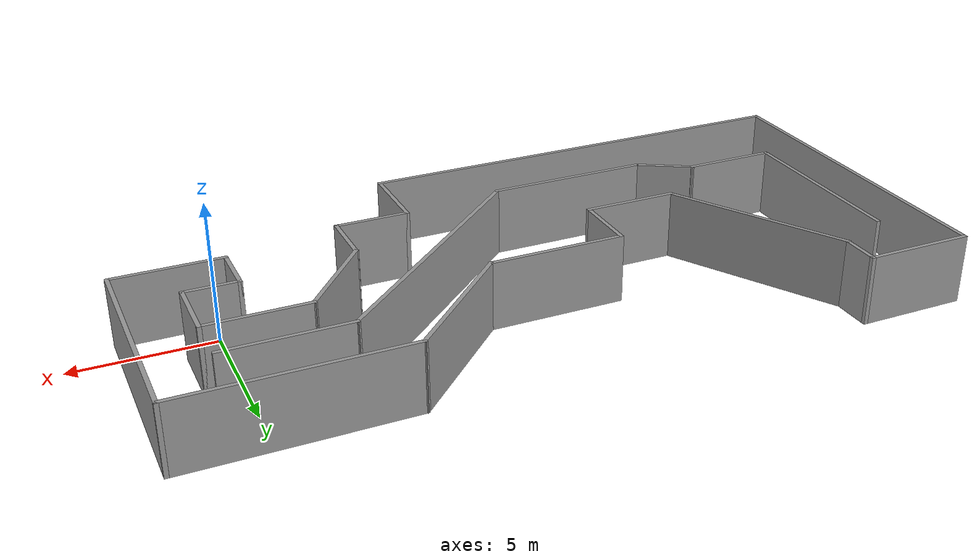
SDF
<?xml version='1.0'?>
<sdf version='1.7'>
  <model name='challenge'>
    <pose>-10.394 1.66925 0 0 -0 0</pose>
    <link name='Wall_0'>
      <collision name='Wall_0_Collision'>
        <geometry>
          <box>
            <size>2 0.15 2.5</size>
          </box>
        </geometry>
        <pose>0 0 1.25 0 -0 0</pose>
      </collision>
      <visual name='Wall_0_Visual'>
        <pose>0 0 1.25 0 -0 0</pose>
        <geometry>
          <box>
            <size>2 0.15 2.5</size>
          </box>
        </geometry>
        <material>
          <script>
            <uri>file://media/materials/scripts/gazebo.material</uri>
            <name>Gazebo/Grey</name>
          </script>
          <ambient>1 1 1 1</ambient>
        </material>
        <meta>
          <layer>0</layer>
        </meta>
      </visual>
      <pose>9.70401 -1.77425 0 0 -0 1.5708</pose>
    </link>
    <link name='Wall_12'>
      <collision name='Wall_12_Collision'>
        <geometry>
          <box>
            <size>8 0.15 2.5</size>
          </box>
        </geometry>
        <pose>0 0 1.25 0 -0 0</pose>
      </collision>
      <visual name='Wall_12_Visual'>
        <pose>0 0 1.25 0 -0 0</pose>
        <geometry>
          <box>
            <size>8 0.15 2.5</size>
          </box>
        </geometry>
        <material>
          <script>
            <uri>file://media/materials/scripts/gazebo.material</uri>
            <name>Gazebo/Grey</name>
          </script>
          <ambient>1 1 1 1</ambient>
        </material>
        <meta>
          <layer>0</layer>
        </meta>
      </visual>
      <pose>13.554 1.22575 0 0 -0 1.5708</pose>
    </link>
    <link name='Wall_13'>
      <collision name='Wall_13_Collision'>
        <geometry>
          <box>
            <size>8 0.15 2.5</size>
          </box>
        </geometry>
        <pose>0 0 1.25 0 -0 0</pose>
      </collision>
      <visual name='Wall_13_Visual'>
        <pose>0 0 1.25 0 -0 0</pose>
        <geometry>
          <box>
            <size>8 0.15 2.5</size>
          </box>
        </geometry>
        <material>
          <script>
            <uri>file://media/materials/scripts/gazebo.material</uri>
            <name>Gazebo/Grey</name>
          </script>
          <ambient>1 1 1 1</ambient>
        </material>
        <meta>
          <layer>0</layer>
        </meta>
      </visual>
      <pose>9.62901 5.15075 0 0 -0 3.14159</pose>
    </link>
    <link name='Wall_18'>
      <collision name='Wall_18_Collision'>
        <geometry>
          <box>
            <size>5.5 0.15 2.5</size>
          </box>
        </geometry>
        <pose>0 0 1.25 0 -0 0</pose>
      </collision>
      <visual name='Wall_18_Visual'>
        <pose>0 0 1.25 0 -0 0</pose>
        <geometry>
          <box>
            <size>5.5 0.15 2.5</size>
          </box>
        </geometry>
        <material>
          <script>
            <uri>file://media/materials/scripts/gazebo.material</uri>
            <name>Gazebo/Grey</name>
          </script>
          <ambient>1 1 1 1</ambient>
        </material>
        <meta>
          <layer>0</layer>
        </meta>
      </visual>
      <pose>3.8125 3.25924 0 0 -0 -2.35619</pose>
    </link>
    <link name='Wall_2'>
      <collision name='Wall_2_Collision'>
        <geometry>
          <box>
            <size>4 0.15 2.5</size>
          </box>
        </geometry>
        <pose>0 0 1.25 0 -0 0</pose>
      </collision>
      <visual name='Wall_2_Visual'>
        <pose>0 0 1.25 0 -0 0</pose>
        <geometry>
          <box>
            <size>4 0.15 2.5</size>
          </box>
        </geometry>
        <material>
          <script>
            <uri>file://media/materials/scripts/gazebo.material</uri>
            <name>Gazebo/Grey</name>
          </script>
          <ambient>1 1 1 1</ambient>
        </material>
        <meta>
          <layer>0</layer>
        </meta>
      </visual>
      <pose>11.629 -2.69925 0 0 -0 0</pose>
    </link>
    <link name='Wall_26'>
      <collision name='Wall_26_Collision'>
        <geometry>
          <box>
            <size>5 0.15 2.5</size>
          </box>
        </geometry>
        <pose>0 0 1.25 0 -0 0</pose>
      </collision>
      <visual name='Wall_26_Visual'>
        <pose>0 0 1.25 0 -0 0</pose>
        <geometry>
          <box>
            <size>5 0.15 2.5</size>
          </box>
        </geometry>
        <material>
          <script>
            <uri>file://media/materials/scripts/gazebo.material</uri>
            <name>Gazebo/Grey</name>
          </script>
          <ambient>1 1 1 1</ambient>
        </material>
        <meta>
          <layer>0</layer>
        </meta>
      </visual>
      <pose>-0.504011 1.36773 0 0 -0 3.14159</pose>
    </link>
    <link name='Wall_27'>
      <collision name='Wall_27_Collision'>
        <geometry>
          <box>
            <size>2.5 0.15 2.5</size>
          </box>
        </geometry>
        <pose>0 0 1.25 0 -0 0</pose>
      </collision>
      <visual name='Wall_27_Visual'>
        <pose>0 0 1.25 0 -0 0</pose>
        <geometry>
          <box>
            <size>2.5 0.15 2.5</size>
          </box>
        </geometry>
        <material>
          <script>
            <uri>file://media/materials/scripts/gazebo.material</uri>
            <name>Gazebo/Grey</name>
          </script>
          <ambient>1 1 1 1</ambient>
        </material>
        <meta>
          <layer>0</layer>
        </meta>
      </visual>
      <pose>-2.92901 0.192726 0 0 -0 -1.5708</pose>
    </link>
    <link name='Wall_28'>
      <collision name='Wall_28_Collision'>
        <geometry>
          <box>
            <size>3.5 0.15 2.5</size>
          </box>
        </geometry>
        <pose>0 0 1.25 0 -0 0</pose>
      </collision>
      <visual name='Wall_28_Visual'>
        <pose>0 0 1.25 0 -0 0</pose>
        <geometry>
          <box>
            <size>3.5 0.15 2.5</size>
          </box>
        </geometry>
        <material>
          <script>
            <uri>file://media/materials/scripts/gazebo.material</uri>
            <name>Gazebo/Grey</name>
          </script>
          <ambient>1 1 1 1</ambient>
        </material>
        <meta>
          <layer>0</layer>
        </meta>
      </visual>
      <pose>-4.60401 -0.982274 0 0 -0 3.14159</pose>
    </link>
    <link name='Wall_30'>
      <collision name='Wall_30_Collision'>
        <geometry>
          <box>
            <size>7 0.15 2.5</size>
          </box>
        </geometry>
        <pose>0 0 1.25 0 -0 0</pose>
      </collision>
      <visual name='Wall_30_Visual'>
        <pose>0 0 1.25 0 -0 0</pose>
        <geometry>
          <box>
            <size>7 0.15 2.5</size>
          </box>
        </geometry>
        <material>
          <script>
            <uri>file://media/materials/scripts/gazebo.material</uri>
            <name>Gazebo/Grey</name>
          </script>
          <ambient>1 1 1 1</ambient>
        </material>
        <meta>
          <layer>0</layer>
        </meta>
      </visual>
      <pose>-7.99151 1.98386 0 0 -0 2.0944</pose>
    </link>
    <link name='Wall_31'>
      <collision name='Wall_31_Collision'>
        <geometry>
          <box>
            <size>1.5 0.15 2.5</size>
          </box>
        </geometry>
        <pose>0 0 1.25 0 -0 0</pose>
      </collision>
      <visual name='Wall_31_Visual'>
        <pose>0 0 1.25 0 -0 0</pose>
        <geometry>
          <box>
            <size>1.5 0.15 2.5</size>
          </box>
        </geometry>
        <material>
          <script>
            <uri>file://media/materials/scripts/gazebo.material</uri>
            <name>Gazebo/Grey</name>
          </script>
          <ambient>1 1 1 1</ambient>
        </material>
        <meta>
          <layer>0</layer>
        </meta>
      </visual>
      <pose>-9.70401 5.625 0 0 -0 1.5708</pose>
    </link>
    <link name='Wall_32'>
      <collision name='Wall_32_Collision'>
        <geometry>
          <box>
            <size>4 0.15 2.5</size>
          </box>
        </geometry>
        <pose>0 0 1.25 0 -0 0</pose>
      </collision>
      <visual name='Wall_32_Visual'>
        <pose>0 0 1.25 0 -0 0</pose>
        <geometry>
          <box>
            <size>4 0.15 2.5</size>
          </box>
        </geometry>
        <material>
          <script>
            <uri>file://media/materials/scripts/gazebo.material</uri>
            <name>Gazebo/Grey</name>
          </script>
          <ambient>1 1 1 1</ambient>
        </material>
        <meta>
          <layer>0</layer>
        </meta>
      </visual>
      <pose>-11.629 6.3 0 0 -0 3.14159</pose>
    </link>
    <link name='Wall_33'>
      <collision name='Wall_33_Collision'>
        <geometry>
          <box>
            <size>12.75 0.15 2.5</size>
          </box>
        </geometry>
        <pose>0 0 1.25 0 -0 0</pose>
      </collision>
      <visual name='Wall_33_Visual'>
        <pose>0 0 1.25 0 -0 0</pose>
        <geometry>
          <box>
            <size>12.75 0.15 2.5</size>
          </box>
        </geometry>
        <material>
          <script>
            <uri>file://media/materials/scripts/gazebo.material</uri>
            <name>Gazebo/Grey</name>
          </script>
          <ambient>1 1 1 1</ambient>
        </material>
        <meta>
          <layer>0</layer>
        </meta>
      </visual>
      <pose>-13.554 0 0 0 -0 -1.5708</pose>
    </link>
    <link name='Wall_34'>
      <collision name='Wall_34_Collision'>
        <geometry>
          <box>
            <size>16.75 0.15 2.5</size>
          </box>
        </geometry>
        <pose>0 0 1.25 0 -0 0</pose>
      </collision>
      <visual name='Wall_34_Visual'>
        <pose>0 0 1.25 0 -0 0</pose>
        <geometry>
          <box>
            <size>16.75 0.15 2.5</size>
          </box>
        </geometry>
        <material>
          <script>
            <uri>file://media/materials/scripts/gazebo.material</uri>
            <name>Gazebo/Grey</name>
          </script>
          <ambient>1 1 1 1</ambient>
        </material>
        <meta>
          <layer>0</layer>
        </meta>
      </visual>
      <pose>-5.25401 -6.3 0 0 -0 0</pose>
    </link>
    <link name='Wall_35'>
      <collision name='Wall_35_Collision'>
        <geometry>
          <box>
            <size>3 0.15 2.5</size>
          </box>
        </geometry>
        <pose>0 0 1.25 0 -0 0</pose>
      </collision>
      <visual name='Wall_35_Visual'>
        <pose>0 0 1.25 0 -0 0</pose>
        <geometry>
          <box>
            <size>3 0.15 2.5</size>
          </box>
        </geometry>
        <material>
          <script>
            <uri>file://media/materials/scripts/gazebo.material</uri>
            <name>Gazebo/Grey</name>
          </script>
          <ambient>1 1 1 1</ambient>
        </material>
        <meta>
          <layer>0</layer>
        </meta>
      </visual>
      <pose>3.04599 -4.875 0 0 -0 1.5708</pose>
    </link>
    <link name='Wall_36'>
      <collision name='Wall_36_Collision'>
        <geometry>
          <box>
            <size>2.75 0.15 2.5</size>
          </box>
        </geometry>
        <pose>0 0 1.25 0 -0 0</pose>
      </collision>
      <visual name='Wall_36_Visual'>
        <pose>0 0 1.25 0 -0 0</pose>
        <geometry>
          <box>
            <size>2.75 0.15 2.5</size>
          </box>
        </geometry>
        <material>
          <script>
            <uri>file://media/materials/scripts/gazebo.material</uri>
            <name>Gazebo/Grey</name>
          </script>
          <ambient>1 1 1 1</ambient>
        </material>
        <meta>
          <layer>0</layer>
        </meta>
      </visual>
      <pose>4.34599 -3.45 0 0 -0 0</pose>
    </link>
    <link name='Wall_38'>
      <collision name='Wall_38_Collision'>
        <geometry>
          <box>
            <size>2 0.15 2.5</size>
          </box>
        </geometry>
        <pose>0 0 1.25 0 -0 0</pose>
      </collision>
      <visual name='Wall_38_Visual'>
        <pose>0 0 1.25 0 -0 0</pose>
        <geometry>
          <box>
            <size>2 0.15 2.5</size>
          </box>
        </geometry>
        <material>
          <script>
            <uri>file://media/materials/scripts/gazebo.material</uri>
            <name>Gazebo/Grey</name>
          </script>
          <ambient>1 1 1 1</ambient>
        </material>
        <meta>
          <layer>0</layer>
        </meta>
      </visual>
      <pose>10.629 -0.849253 0 0 -0 0</pose>
    </link>
    <link name='Wall_39'>
      <collision name='Wall_39_Collision'>
        <geometry>
          <box>
            <size>2.5 0.15 2.5</size>
          </box>
        </geometry>
        <pose>0 0 1.25 0 -0 0</pose>
      </collision>
      <visual name='Wall_39_Visual'>
        <pose>0 0 1.25 0 -0 0</pose>
        <geometry>
          <box>
            <size>2.5 0.15 2.5</size>
          </box>
        </geometry>
        <material>
          <script>
            <uri>file://media/materials/scripts/gazebo.material</uri>
            <name>Gazebo/Grey</name>
          </script>
          <ambient>1 1 1 1</ambient>
        </material>
        <meta>
          <layer>0</layer>
        </meta>
      </visual>
      <pose>11.554 0.325747 0 0 -0 1.5708</pose>
    </link>
    <link name='Wall_40'>
      <collision name='Wall_40_Collision'>
        <geometry>
          <box>
            <size>3.75 0.15 2.5</size>
          </box>
        </geometry>
        <pose>0 0 1.25 0 -0 0</pose>
      </collision>
      <visual name='Wall_40_Visual'>
        <pose>0 0 1.25 0 -0 0</pose>
        <geometry>
          <box>
            <size>3.75 0.15 2.5</size>
          </box>
        </geometry>
        <material>
          <script>
            <uri>file://media/materials/scripts/gazebo.material</uri>
            <name>Gazebo/Grey</name>
          </script>
          <ambient>1 1 1 1</ambient>
        </material>
        <meta>
          <layer>0</layer>
        </meta>
      </visual>
      <pose>9.75401 1.50075 0 0 -0 3.14159</pose>
    </link>
    <link name='Wall_43'>
      <collision name='Wall_43_Collision'>
        <geometry>
          <box>
            <size>2.25 0.15 2.5</size>
          </box>
        </geometry>
        <pose>0 0 1.25 0 -0 0</pose>
      </collision>
      <visual name='Wall_43_Visual'>
        <pose>0 0 1.25 0 -0 0</pose>
        <geometry>
          <box>
            <size>2.25 0.15 2.5</size>
          </box>
        </geometry>
        <material>
          <script>
            <uri>file://media/materials/scripts/gazebo.material</uri>
            <name>Gazebo/Grey</name>
          </script>
          <ambient>1 1 1 1</ambient>
        </material>
        <meta>
          <layer>0</layer>
        </meta>
      </visual>
      <pose>5.64599 -2.4 0 0 -0 1.5708</pose>
    </link>
    <link name='Wall_44'>
      <collision name='Wall_44_Collision'>
        <geometry>
          <box>
            <size>3.81793 0.15 2.5</size>
          </box>
        </geometry>
        <pose>0 0 1.25 0 -0 0</pose>
      </collision>
      <visual name='Wall_44_Visual'>
        <pose>0 0 1.25 0 -0 0</pose>
        <geometry>
          <box>
            <size>3.81793 0.15 2.5</size>
          </box>
        </geometry>
        <material>
          <script>
            <uri>file://media/materials/scripts/gazebo.material</uri>
            <name>Gazebo/Grey</name>
          </script>
          <ambient>1 1 1 1</ambient>
        </material>
        <meta>
          <layer>0</layer>
        </meta>
      </visual>
      <pose>6.8 0.075374 0 0 -0 0.890217</pose>
    </link>
    <link name='Wall_61'>
      <collision name='Wall_61_Collision'>
        <geometry>
          <box>
            <size>4.5 0.15 2.5</size>
          </box>
        </geometry>
        <pose>0 0 1.25 0 -0 0</pose>
      </collision>
      <visual name='Wall_61_Visual'>
        <pose>0 0 1.25 0 -0 0</pose>
        <geometry>
          <box>
            <size>4.5 0.15 2.5</size>
          </box>
        </geometry>
        <material>
          <script>
            <uri>file://media/materials/scripts/gazebo.material</uri>
            <name>Gazebo/Grey</name>
          </script>
          <ambient>1 1 1 1</ambient>
        </material>
        <meta>
          <layer>0</layer>
        </meta>
      </visual>
      <pose>9.30026 3.20673 0 0 -0 0</pose>
    </link>
    <link name='Wall_65'>
      <collision name='Wall_65_Collision'>
        <geometry>
          <box>
            <size>7 0.15 2.5</size>
          </box>
        </geometry>
        <pose>0 0 1.25 0 -0 0</pose>
      </collision>
      <visual name='Wall_65_Visual'>
        <pose>0 0 1.25 0 -0 0</pose>
        <geometry>
          <box>
            <size>7 0.15 2.5</size>
          </box>
        </geometry>
        <material>
          <script>
            <uri>file://media/materials/scripts/gazebo.material</uri>
            <name>Gazebo/Grey</name>
          </script>
          <ambient>1 1 1 1</ambient>
        </material>
        <meta>
          <layer>0</layer>
        </meta>
      </visual>
      <pose>-11.6461 0.631301 0 0 -0 -1.5708</pose>
    </link>
    <link name='Wall_66'>
      <collision name='Wall_66_Collision'>
        <geometry>
          <box>
            <size>3.5 0.15 2.5</size>
          </box>
        </geometry>
        <pose>0 0 1.25 0 -0 0</pose>
      </collision>
      <visual name='Wall_66_Visual'>
        <pose>0 0 1.25 0 -0 0</pose>
        <geometry>
          <box>
            <size>3.5 0.15 2.5</size>
          </box>
        </geometry>
        <material>
          <script>
            <uri>file://media/materials/scripts/gazebo.material</uri>
            <name>Gazebo/Grey</name>
          </script>
          <ambient>1 1 1 1</ambient>
        </material>
        <meta>
          <layer>0</layer>
        </meta>
      </visual>
      <pose>-9.97112 -2.7937 0 0 -0 0</pose>
    </link>
    <link name='Wall_67'>
      <collision name='Wall_67_Collision'>
        <geometry>
          <box>
            <size>2.25 0.15 2.5</size>
          </box>
        </geometry>
        <pose>0 0 1.25 0 -0 0</pose>
      </collision>
      <visual name='Wall_67_Visual'>
        <pose>0 0 1.25 0 -0 0</pose>
        <geometry>
          <box>
            <size>2.25 0.15 2.5</size>
          </box>
        </geometry>
        <material>
          <script>
            <uri>file://media/materials/scripts/gazebo.material</uri>
            <name>Gazebo/Grey</name>
          </script>
          <ambient>1 1 1 1</ambient>
        </material>
        <meta>
          <layer>0</layer>
        </meta>
      </visual>
      <pose>-7.3868 -3.3187 0 0 -0 -0.523599</pose>
    </link>
    <link name='Wall_68'>
      <collision name='Wall_68_Collision'>
        <geometry>
          <box>
            <size>6 0.15 2.5</size>
          </box>
        </geometry>
        <pose>0 0 1.25 0 -0 0</pose>
      </collision>
      <visual name='Wall_68_Visual'>
        <pose>0 0 1.25 0 -0 0</pose>
        <geometry>
          <box>
            <size>6 0.15 2.5</size>
          </box>
        </geometry>
        <material>
          <script>
            <uri>file://media/materials/scripts/gazebo.material</uri>
            <name>Gazebo/Grey</name>
          </script>
          <ambient>1 1 1 1</ambient>
        </material>
        <meta>
          <layer>0</layer>
        </meta>
      </visual>
      <pose>-3.55247 -3.8437 0 0 -0 0</pose>
    </link>
    <link name='Wall_69'>
      <collision name='Wall_69_Collision'>
        <geometry>
          <box>
            <size>10.6292 0.15 2.5</size>
          </box>
        </geometry>
        <pose>0 0 1.25 0 -0 0</pose>
      </collision>
      <visual name='Wall_69_Visual'>
        <pose>0 0 1.25 0 -0 0</pose>
        <geometry>
          <box>
            <size>10.6292 0.15 2.5</size>
          </box>
        </geometry>
        <material>
          <script>
            <uri>file://media/materials/scripts/gazebo.material</uri>
            <name>Gazebo/Grey</name>
          </script>
          <ambient>1 1 1 1</ambient>
        </material>
        <meta>
          <layer>0</layer>
        </meta>
      </visual>
      <pose>3.2489 -0.318482 0 0 -0 0.737991</pose>
    </link>
    <static>1</static>
  </model>
</sdf>
